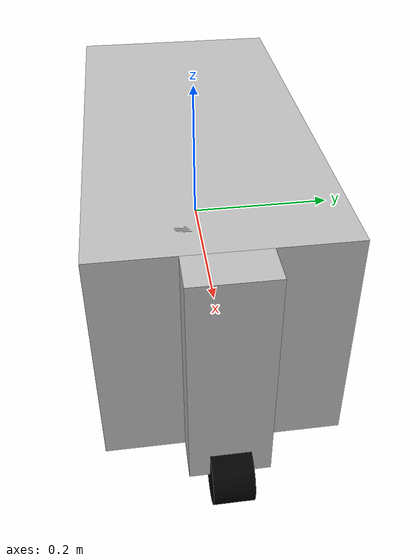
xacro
<?xml version='1.0'?>

<!-- Robot URDF model adapted from:
  Original source: https://github.com/osrf/rosbook/blob/master/code/tortoisebot/tortoisebot.urdf
  Credit: OSRF ROS Book - TortoiseBot
-->

<robot name="myrobot" xmlns:xacro="http://www.ros.org/wiki/xacro">
<xacro:include filename="$(find myrobot_gazebo)/urdf/myrobot.gazebo" />

  <link name="base_link">
    <visual>
      <geometry>
        <box size="0.6 0.3 0.3"/>
      </geometry>
         <material name="silver">
        <color rgba="0.75 0.75 0.75 1"/>
      </material>
    </visual>
    <collision>
      <geometry>
        <box size="0.6 0.3 0.3"/>
      </geometry>
    </collision>
    <inertial>
      <mass value="1.0"/>
      <inertia ixx="0.015" iyy="0.0375" izz="0.0375" ixy="0" ixz="0" iyz="0"/>
    </inertial>
  </link>

  <link name="front_caster">
    <visual>
      <geometry>
        <box size="0.1 0.1 0.3"/>
      </geometry>
        <material name="silver">
        <color rgba="0.75 0.75 0.75 1"/>
      </material>
    </visual>
    <collision>
      <geometry>
        <box size="0.1 0.1 0.3"/>
      </geometry>
    </collision>
    <inertial>
      <mass value="0.1"/>
      <inertia ixx="0.00083" iyy="0.00083" izz="0.000167" ixy="0" ixz="0" iyz="0"/>
    </inertial>
  </link>

  <joint name="front_caster_joint" type="continuous">
    <axis xyz="0 0 1"/>
    <parent link="base_link"/>
    <child link="front_caster"/>
    <origin rpy="0 0 0" xyz="0.3 0 0"/>
  </joint>

  <link name="front_wheel">
    <visual>
      <geometry>
        <cylinder length="0.05" radius="0.035"/>
      </geometry>
      <material name="black">
        <color rgba="0.0 0.0 0.0 1.0"/>
        </material>
    </visual>
    <collision>
      <geometry>
        <cylinder length="0.05" radius="0.035"/>
      </geometry>
    </collision>
    <inertial>
      <mass value="0.1"/>
      <inertia ixx="5.1458e-5" iyy="5.1458e-5" izz="6.125e-5" ixy="0" ixz="0" iyz="0"/>
    </inertial>
  </link>

  <joint name="front_wheel_joint" type="continuous">
    <axis xyz="0 0 1"/>
    <parent link="front_caster"/>
    <child link="front_wheel"/>
    <origin rpy="-1.5708 0 0" xyz="0.05 0 -.15"/>
  </joint>

  <link name="right_wheel">
    <visual>
      <geometry>
        <cylinder length="0.05" radius="0.035"/>
      </geometry>
      <material name="black">
        <color rgba="0 0 0 1"/>
      </material>
    </visual>
     <transparency>0.3</transparency>
    <collision>
      <geometry>
        <cylinder length="0.05" radius="0.035"/>
      </geometry>
    </collision>
    <inertial>
      <mass value="0.1"/>
      <inertia ixx="5.1458e-5" iyy="5.1458e-5" izz="6.125e-5" ixy="0" ixz="0" iyz="0"/>
    </inertial>
  </link>

  <joint name="right_wheel_joint" type="continuous">
    <axis xyz="0 0 1"/>
    <parent link="base_link"/>
    <child link="right_wheel"/>
    <origin rpy="-1.5708 0 0" xyz="-0.2825 -0.125 -.15"/>
  </joint>

  <link name="left_wheel">
    <visual>
      <geometry>
        <cylinder length="0.05" radius="0.035"/>
      </geometry>
       <material name="black">
        <color rgba="0.0 0.0 0.0 1.0"/>
       </material>
    </visual>
    <collision>
      <geometry>
        <cylinder length="0.05" radius="0.035"/>
      </geometry>
    </collision>
    <inertial>
      <mass value="0.1"/>
      <inertia ixx="5.1458e-5" iyy="5.1458e-5" izz="6.125e-5" ixy="0" ixz="0" iyz="0"/>
    </inertial>
  </link>

  <joint name="left_wheel_joint" type="continuous">
    <axis xyz="0 0 1"/>
    <parent link="base_link"/>
    <child link="left_wheel"/>
    <origin rpy="-1.5708 0 0" xyz="-0.2825 0.125 -.15"/>
  </joint>

</robot>
